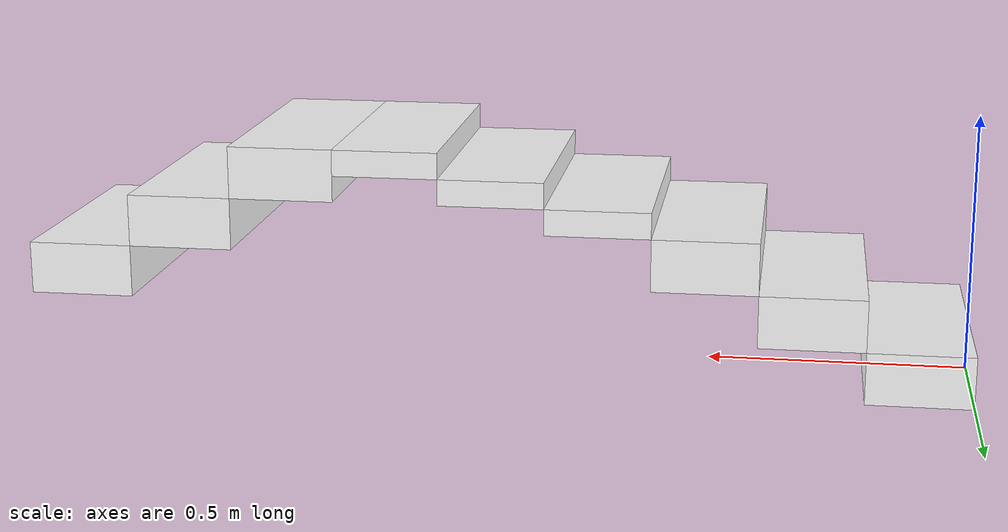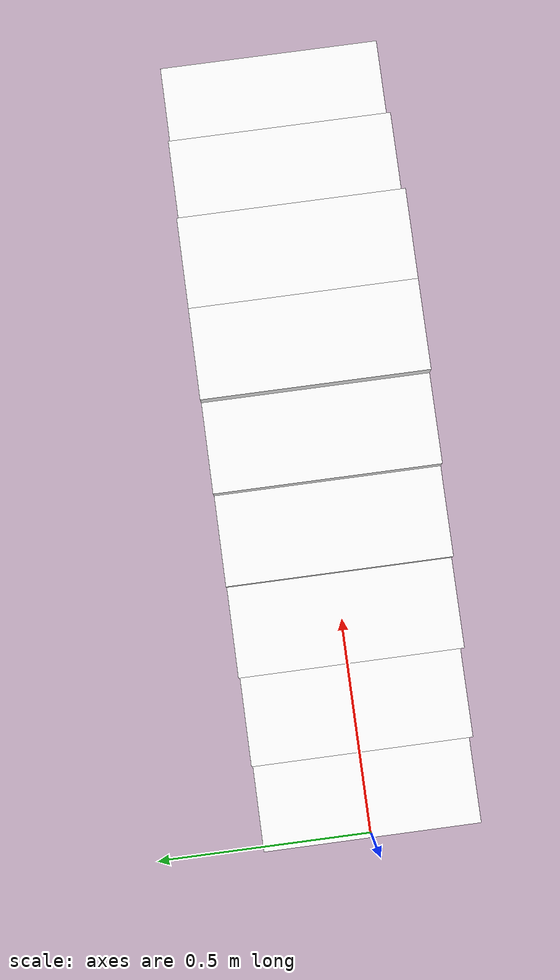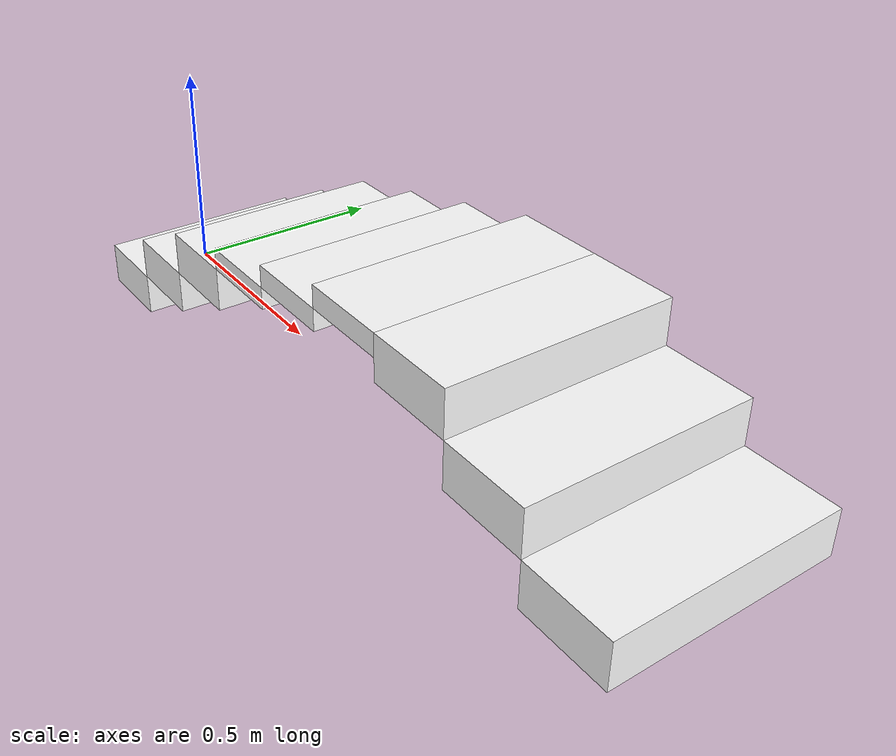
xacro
<?xml version="1.0"?>
<robot xmlns:xacro="http://www.ros.org/wiki/xacro" name="staircase_assembled">

    <xacro:include filename="$(find obstacles)/urdf/primitives/colors.xacro"/>
    <xacro:include filename="$(find obstacles)/urdf/primitives/staircase.xacro"/>

    <link name="base_link">
    </link>

    <xacro:property name="seg1_quantity" value="3"/>
    <xacro:property name="seg1_height" value="0.1"/>
    <xacro:property name="seg1_depth" value="0.2"/>
    <xacro:property name="seg1_width" value="0.5"/>
    <xacro:property name="seg1_offset_x" value="0.0"/>
    <xacro:property name="seg1_offset_z" value="0.0"/>

    <xacro:property name="seg2_quantity" value="3"/>
    <xacro:property name="seg2_height" value="0.05"/>
    <xacro:property name="seg2_depth" value="0.2"/>
    <xacro:property name="seg2_width" value="0.5"/>
    <xacro:property name="seg2_offset_x" value="${seg1_offset_x + seg1_depth*seg1_quantity}"/>
    <xacro:property name="seg2_offset_z" value="${seg1_offset_z + seg1_height*seg1_quantity}"/>

    <xacro:property name="seg3_quantity" value="3"/>
    <xacro:property name="seg3_height" value="-0.1"/>
    <xacro:property name="seg3_depth" value="0.2"/>
    <xacro:property name="seg3_width" value="0.5"/>
    <xacro:property name="seg3_offset_x" value="${seg2_offset_x + seg2_depth*seg2_quantity}"/>
    <xacro:property name="seg3_offset_z" value="${seg2_offset_z + seg2_height*seg2_quantity}"/>

    <xacro:staircase_segment postfix="seg1" quantity="${seg1_quantity}" height="${seg1_height}" depth="${seg1_depth}" width="${seg1_width}" offset_x="${seg1_offset_x}" offset_z="${seg1_offset_z}"/>
    <xacro:staircase_segment postfix="seg2" quantity="${seg2_quantity}" height="${seg2_height}" depth="${seg2_depth}" width="${seg2_width}" offset_x="${seg2_offset_x}" offset_z="${seg2_offset_z}"/>
    <xacro:staircase_segment postfix="seg3" quantity="${seg3_quantity}" height="${seg3_height}" depth="${seg3_depth}" width="${seg3_width}" offset_x="${seg3_offset_x}" offset_z="${seg3_offset_z}"/>
</robot>

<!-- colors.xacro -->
<robot xmlns:xacro="http://www.ros.org/wiki/xacro" name="colors">
   <material name="white_opaque">
        <color rgba="1 1 1 1"/>
    </material>
</robot>

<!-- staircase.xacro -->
<robot xmlns:xacro="http://www.ros.org/wiki/xacro" name="staircase">

    <xacro:macro name="staircase_segment" params="postfix quantity height depth width offset_x offset_z">
        <link name="staircase_${postfix}_${quantity-1}">
            <visual>
                <geometry>
                    <box size="${depth} ${width} ${height if height >= 0 else -height}"/>
                </geometry>
                <material name="white_opaque"/>
            </visual>
            <collision>
                <geometry>
                    <box size="${depth} ${width} ${height if height >= 0 else -height}"/>
                </geometry>
            </collision>
        </link>

        <joint name="staircase_joint_${postfix}_${quantity-1}" type="fixed">
            <parent link="base_link"/>
            <child link="staircase_${postfix}_${quantity-1}"/>
            <!-- /2 offset needed for staircase to be fully above ground and aligned with other segments-->
            <origin xyz="${offset_x + depth/2} 0 ${offset_z + height/2}" rpy="0 0 0"/>
        </joint>

        <!-- create staircases recursively, use quantity-1 because recursion stops at zero-->
        <xacro:if value="${quantity-1}">
            <xacro:staircase_segment postfix="${postfix}" quantity="${quantity-1}" height="${height}" depth="${depth}" width="${width}" offset_x="${offset_x+depth}" offset_z="${offset_z+height}"/>
        </xacro:if>
    </xacro:macro>
</robot>
